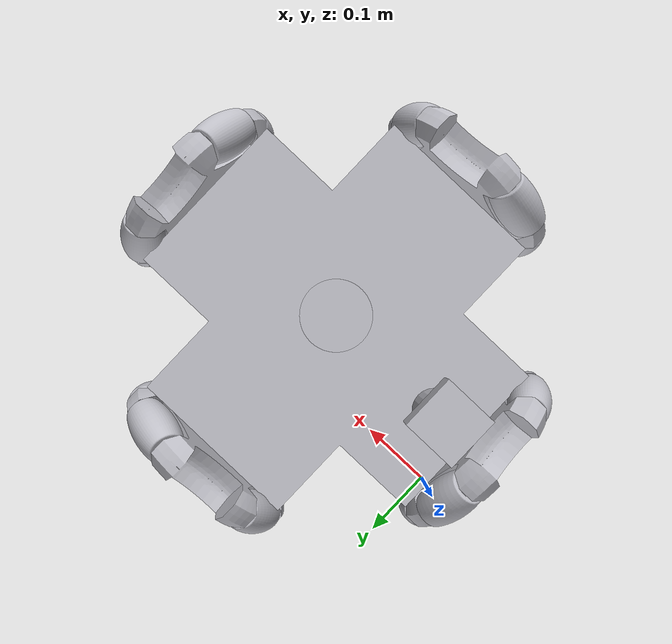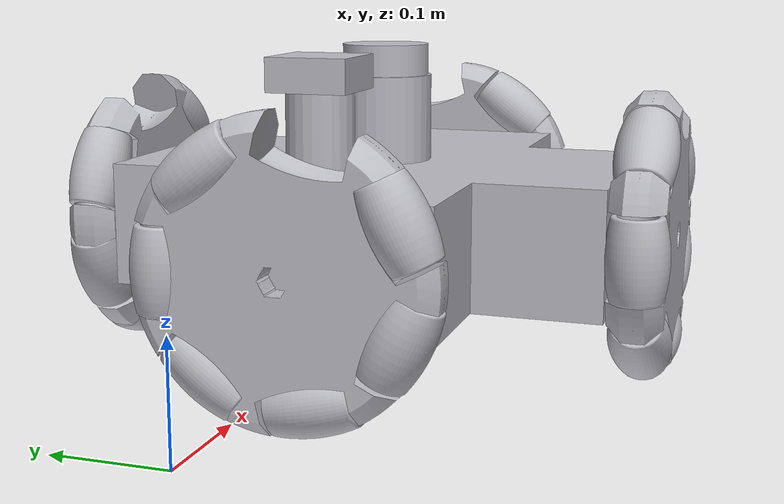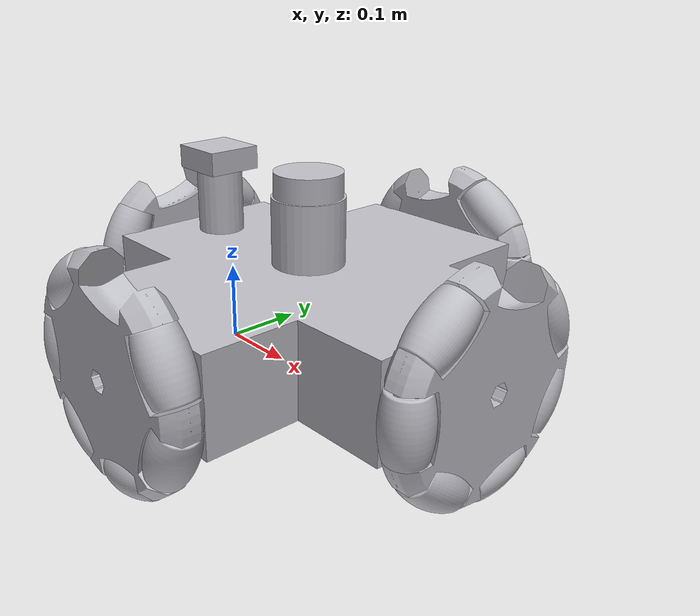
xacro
<?xml version="1.0" ?>
<robot name="robot" xmlns:xacro="http://www.ros.org/wiki/xacro">

<xacro:include filename="$(find robot_description)/urdf/materials.xacro" />
<xacro:include filename="$(find robot_description)/urdf/robot.trans" />
<xacro:include filename="$(find robot_description)/urdf/robot.gazebo" />
<link name="base_footprint"/>
  <material name="white">
    <color rgba="0 0 0 1"/>
  </material>
<link name="base_link">
  <inertial>
    <origin xyz="0.24111155939066492 -0.07977210689211883 0.14685100507879903" rpy="0 0 0"/>
    <mass value="97.70655736264345"/>
    <inertia ixx="1.04738" iyy="1.071388" izz="1.910052" ixy="-0.0" iyz="0.0" ixz="0.013263"/>
  </inertial>
  <visual>
    <origin xyz="0 0 0" rpy="0 0 0"/>
    <geometry>
      <mesh filename="package://robot_description/meshes/base_link.stl" scale="0.001 0.001 0.001"/>
    </geometry>
    <material name="silver"/>
  </visual>
  <collision>
    <origin xyz="0 0 0" rpy="0 0 0"/>
    <geometry>
      <mesh filename="package://robot_description/meshes/base_link.stl" scale="0.001 0.001 0.001"/>
    </geometry>
  </collision>
</link>

<link name="wheel_1">
  <inertial>
    <origin xyz="-0.02091336594637204 2.255264061681861e-06 7.483123681401027e-06" rpy="0 0 0"/>
    <mass value="70.92071942604584"/>
    <inertia ixx="0.29308" iyy="0.15702" izz="0.15698" ixy="-0.0" iyz="-2e-05" ixz="-0.0"/>
  </inertial>
  <visual>
    <origin xyz="-0.042768 0.079772 -0.1438" rpy="0 0 0"/>
    <geometry>
      <mesh filename="package://robot_description/meshes/wheel_1.stl" scale="0.001 0.001 0.001"/>
    </geometry>
    <material name="silver"/>
  </visual>
  <collision>
    <origin xyz="-0.042768 0.079772 -0.1438" rpy="0 0 0"/>
    <geometry>
      <mesh filename="package://robot_description/meshes/wheel_1.stl" scale="0.001 0.001 0.001"/>
    </geometry>
  </collision>
</link>

<link name="roller_1_4">
  <inertial>
    <origin xyz="0.0002714843752283855 -3.7326580984431423e-07 0.031113651264933442" rpy="0 0 0"/>
    <mass value="0.5043476523006108"/>
    <inertia ixx="0.000236" iyy="0.000236" izz="0.000175" ixy="-0.0" iyz="0.0" ixz="-1e-06"/>
  </inertial>
  <visual>
    <origin xyz="-0.020768 -0.011544 -0.110226" rpy="0 0 0"/>
    <geometry>
      <mesh filename="package://robot_description/meshes/roller_1_4.stl" scale="0.001 0.001 0.001"/>
    </geometry>
    <material name="silver"/>
  </visual>
  <collision>
    <origin xyz="-0.020768 -0.011544 -0.110226" rpy="0 0 0"/>
    <geometry>
      <mesh filename="package://robot_description/meshes/roller_1_4.stl" scale="0.001 0.001 0.001"/>
    </geometry>
  </collision>
</link>

<link name="roller_1_5">
  <inertial>
    <origin xyz="0.0002722996502091714 0.03042518984782501 -0.0069439932270144444" rpy="0 0 0"/>
    <mass value="0.5043476523006108"/>
    <inertia ixx="0.000236" iyy="0.000178" izz="0.000233" ixy="-1e-06" iyz="1.3e-05" ixz="0.0"/>
  </inertial>
  <visual>
    <origin xyz="-0.020768 0.132825 -0.062245" rpy="0 0 0"/>
    <geometry>
      <mesh filename="package://robot_description/meshes/roller_1_5.stl" scale="0.001 0.001 0.001"/>
    </geometry>
    <material name="silver"/>
  </visual>
  <collision>
    <origin xyz="-0.020768 0.132825 -0.062245" rpy="0 0 0"/>
    <geometry>
      <mesh filename="package://robot_description/meshes/roller_1_5.stl" scale="0.001 0.001 0.001"/>
    </geometry>
  </collision>
</link>

<link name="roller_1_6">
  <inertial>
    <origin xyz="0.0002714843752286353 0.013499551149427913 -0.028032822727647927" rpy="0 0 0"/>
    <mass value="0.5043476523006108"/>
    <inertia ixx="0.000236" iyy="0.000224" izz="0.000186" ixy="-0.0" iyz="2.4e-05" ixz="0.0"/>
  </inertial>
  <visual>
    <origin xyz="-0.020768 0.176612 -0.13443" rpy="0 0 0"/>
    <geometry>
      <mesh filename="package://robot_description/meshes/roller_1_6.stl" scale="0.001 0.001 0.001"/>
    </geometry>
    <material name="silver"/>
  </visual>
  <collision>
    <origin xyz="-0.020768 0.176612 -0.13443" rpy="0 0 0"/>
    <geometry>
      <mesh filename="package://robot_description/meshes/roller_1_6.stl" scale="0.001 0.001 0.001"/>
    </geometry>
  </collision>
</link>

<link name="roller_1_2">
  <inertial>
    <origin xyz="0.0002722996502090673 0.02439841665668805 0.019456906056625527" rpy="0 0 0"/>
    <mass value="0.5043476523006108"/>
    <inertia ixx="0.000236" iyy="0.000198" izz="0.000212" ixy="-0.0" iyz="-3e-05" ixz="-0.0"/>
  </inertial>
  <visual>
    <origin xyz="-0.020768 0.049087 -0.051474" rpy="0 0 0"/>
    <geometry>
      <mesh filename="package://robot_description/meshes/roller_1_2.stl" scale="0.001 0.001 0.001"/>
    </geometry>
    <material name="silver"/>
  </visual>
  <collision>
    <origin xyz="-0.020768 0.049087 -0.051474" rpy="0 0 0"/>
    <geometry>
      <mesh filename="package://robot_description/meshes/roller_1_2.stl" scale="0.001 0.001 0.001"/>
    </geometry>
  </collision>
</link>

<link name="wheel_2">
  <inertial>
    <origin xyz="-2.4030989059231622e-06 -0.020913431895765278 7.483123681567561e-06" rpy="0 0 0"/>
    <mass value="70.92071942604584"/>
    <inertia ixx="0.15702" iyy="0.29308" izz="0.15698" ixy="0.0" iyz="-0.0" ixz="2e-05"/>
  </inertial>
  <visual>
    <origin xyz="-0.242768 0.279772 -0.1438" rpy="0 0 0"/>
    <geometry>
      <mesh filename="package://robot_description/meshes/wheel_2.stl" scale="0.001 0.001 0.001"/>
    </geometry>
    <material name="silver"/>
  </visual>
  <collision>
    <origin xyz="-0.242768 0.279772 -0.1438" rpy="0 0 0"/>
    <geometry>
      <mesh filename="package://robot_description/meshes/wheel_2.stl" scale="0.001 0.001 0.001"/>
    </geometry>
  </collision>
</link>

<link name="wheel_3">
  <inertial>
    <origin xyz="0.020913284060920412 -2.469048299535981e-06 7.483123681401027e-06" rpy="0 0 0"/>
    <mass value="70.92071942604584"/>
    <inertia ixx="0.29308" iyy="0.15702" izz="0.15698" ixy="-0.0" iyz="2e-05" ixz="0.0"/>
  </inertial>
  <visual>
    <origin xyz="-0.442768 0.079772 -0.1438" rpy="0 0 0"/>
    <geometry>
      <mesh filename="package://robot_description/meshes/wheel_3.stl" scale="0.001 0.001 0.001"/>
    </geometry>
    <material name="silver"/>
  </visual>
  <collision>
    <origin xyz="-0.442768 0.079772 -0.1438" rpy="0 0 0"/>
    <geometry>
      <mesh filename="package://robot_description/meshes/wheel_3.stl" scale="0.001 0.001 0.001"/>
    </geometry>
  </collision>
</link>

<link name="wheel_4">
  <inertial>
    <origin xyz="2.3212134547534458e-06 0.020913218111527493 7.483123681567561e-06" rpy="0 0 0"/>
    <mass value="70.92071942604584"/>
    <inertia ixx="0.15702" iyy="0.29308" izz="0.15698" ixy="0.0" iyz="0.0" ixz="-2e-06"/>
  </inertial>
  <visual>
    <origin xyz="-0.242768 -0.120228 -0.1438" rpy="0 0 0"/>
    <geometry>
      <mesh filename="package://robot_description/meshes/wheel_4.stl" scale="0.001 0.001 0.001"/>
    </geometry>
    <material name="silver"/>
  </visual>
  <collision>
    <origin xyz="-0.242768 -0.120228 -0.1438" rpy="0 0 0"/>
    <geometry>
      <mesh filename="package://robot_description/meshes/wheel_4.stl" scale="0.001 0.001 0.001"/>
    </geometry>
  </collision>
</link>

<link name="roller_2_5">
  <inertial>
    <origin xyz="0.024398625276668112 0.00027223369917195317 0.01945693684387137" rpy="0 0 0"/>
    <mass value="0.50434765230061"/>
    <inertia ixx="0.000198" iyy="0.000236" izz="0.000212" ixy="-0.0" iyz="-0.0" ixz="-3e-05"/>
  </inertial>
  <visual>
    <origin xyz="-0.159584 0.301772 -0.194261" rpy="0 0 0"/>
    <geometry>
      <mesh filename="package://robot_description/meshes/roller_2_5.stl" scale="0.001 0.001 0.001"/>
    </geometry>
    <material name="silver"/>
  </visual>
  <collision>
    <origin xyz="-0.159584 0.301772 -0.194261" rpy="0 0 0"/>
    <geometry>
      <mesh filename="package://robot_description/meshes/roller_2_5.stl" scale="0.001 0.001 0.001"/>
    </geometry>
  </collision>
</link>

<link name="roller_2_4">
  <inertial>
    <origin xyz="2.2543178757050697e-07 0.0002714184241910389 0.031113651265674877" rpy="0 0 0"/>
    <mass value="0.50434765230061"/>
    <inertia ixx="0.000236" iyy="0.000236" izz="0.000175" ixy="-0.0" iyz="-1e-06" ixz="0.0"/>
  </inertial>
  <visual>
    <origin xyz="-0.151452 0.301772 -0.110226" rpy="0 0 0"/>
    <geometry>
      <mesh filename="package://robot_description/meshes/roller_2_4.stl" scale="0.001 0.001 0.001"/>
    </geometry>
    <material name="silver"/>
  </visual>
  <collision>
    <origin xyz="-0.151452 0.301772 -0.110226" rpy="0 0 0"/>
    <geometry>
      <mesh filename="package://robot_description/meshes/roller_2_4.stl" scale="0.001 0.001 0.001"/>
    </geometry>
  </collision>
</link>

<link name="roller_2_3">
  <inertial>
    <origin xyz="-0.02432552480857772 0.0002714184243299833 0.019398658856668742" rpy="0 0 0"/>
    <mass value="0.50434765230061"/>
    <inertia ixx="0.000198" iyy="0.000236" izz="0.000212" ixy="0.0" iyz="-0.0" ixz="3e-05"/>
  </inertial>
  <visual>
    <origin xyz="-0.212083 0.301772 -0.051474" rpy="0 0 0"/>
    <geometry>
      <mesh filename="package://robot_description/meshes/roller_2_3.stl" scale="0.001 0.001 0.001"/>
    </geometry>
    <material name="silver"/>
  </visual>
  <collision>
    <origin xyz="-0.212083 0.301772 -0.051474" rpy="0 0 0"/>
    <geometry>
      <mesh filename="package://robot_description/meshes/roller_2_3.stl" scale="0.001 0.001 0.001"/>
    </geometry>
  </collision>
</link>

<link name="roller_2_2">
  <inertial>
    <origin xyz="-0.030333258690093567 0.0002714184241914275 -0.006923205040461698" rpy="0 0 0"/>
    <mass value="0.50434765230061"/>
    <inertia ixx="0.000178" iyy="0.000236" izz="0.000233" ixy="1e-06" iyz="0.0" ixz="-1.3e-05"/>
  </inertial>
  <visual>
    <origin xyz="-0.29582 0.301772 -0.062245" rpy="0 0 0"/>
    <geometry>
      <mesh filename="package://robot_description/meshes/roller_2_2.stl" scale="0.001 0.001 0.001"/>
    </geometry>
    <material name="silver"/>
  </visual>
  <collision>
    <origin xyz="-0.29582 0.301772 -0.062245" rpy="0 0 0"/>
    <geometry>
      <mesh filename="package://robot_description/meshes/roller_2_2.stl" scale="0.001 0.001 0.001"/>
    </geometry>
  </collision>
</link>

<link name="roller_2_7">
  <inertial>
    <origin xyz="0.013499883392466938 0.0002714184261300989 -0.028031998836505367" rpy="0 0 0"/>
    <mass value="0.50434765230061"/>
    <inertia ixx="0.000224" iyy="0.000236" izz="0.000186" ixy="-0.0" iyz="0.0" ixz="2.4e-05"/>
  </inertial>
  <visual>
    <origin xyz="-0.310473 0.301772 -0.21367" rpy="0 0 0"/>
    <geometry>
      <mesh filename="package://robot_description/meshes/roller_2_7.stl" scale="0.001 0.001 0.001"/>
    </geometry>
    <material name="silver"/>
  </visual>
  <collision>
    <origin xyz="-0.310473 0.301772 -0.21367" rpy="0 0 0"/>
    <geometry>
      <mesh filename="package://robot_description/meshes/roller_2_7.stl" scale="0.001 0.001 0.001"/>
    </geometry>
  </collision>
</link>

<link name="roller_3_4">
  <inertial>
    <origin xyz="-0.00027156625903568266 0.024325519647217297 0.019398689639133104" rpy="0 0 0"/>
    <mass value="0.5043476523006117"/>
    <inertia ixx="0.000236" iyy="0.000198" izz="0.000212" ixy="0.0" iyz="-3e-05" ixz="0.0"/>
  </inertial>
  <visual>
    <origin xyz="-0.464768 0.162956 -0.194261" rpy="0 0 0"/>
    <geometry>
      <mesh filename="package://robot_description/meshes/roller_3_4.stl" scale="0.001 0.001 0.001"/>
    </geometry>
    <material name="silver"/>
  </visual>
  <collision>
    <origin xyz="-0.464768 0.162956 -0.194261" rpy="0 0 0"/>
    <geometry>
      <mesh filename="package://robot_description/meshes/roller_3_4.stl" scale="0.001 0.001 0.001"/>
    </geometry>
  </collision>
</link>

<link name="roller_3_3">
  <inertial>
    <origin xyz="-0.0002715662590359047 1.5948517681496632e-07 0.031113651265698858" rpy="0 0 0"/>
    <mass value="0.5043476523006117"/>
    <inertia ixx="0.000236" iyy="0.000236" izz="0.000175" ixy="-0.0" iyz="-0.0" ixz="1e-06"/>
  </inertial>
  <visual>
    <origin xyz="-0.464768 0.171088 -0.110226" rpy="0 0 0"/>
    <geometry>
      <mesh filename="package://robot_description/meshes/roller_3_3.stl" scale="0.001 0.001 0.001"/>
    </geometry>
    <material name="silver"/>
  </visual>
  <collision>
    <origin xyz="-0.464768 0.171088 -0.110226" rpy="0 0 0"/>
    <geometry>
      <mesh filename="package://robot_description/meshes/roller_3_3.stl" scale="0.001 0.001 0.001"/>
    </geometry>
  </collision>
</link>

<link name="roller_3_5">
  <inertial>
    <origin xyz="-0.0002723815340174296 -0.02439863043927684 0.01945690605992096" rpy="0 0 0"/>
    <mass value="0.5043476523006117"/>
    <inertia ixx="0.000236" iyy="0.000198" izz="0.000212" ixy="-0.0" iyz="3e-05" ixz="0.0"/>
  </inertial>
  <visual>
    <origin xyz="-0.464768 0.110457 -0.051474" rpy="0 0 0"/>
    <geometry>
      <mesh filename="package://robot_description/meshes/roller_3_5.stl" scale="0.001 0.001 0.001"/>
    </geometry>
    <material name="silver"/>
  </visual>
  <collision>
    <origin xyz="-0.464768 0.110457 -0.051474" rpy="0 0 0"/>
    <geometry>
      <mesh filename="package://robot_description/meshes/roller_3_5.stl" scale="0.001 0.001 0.001"/>
    </geometry>
  </collision>
</link>

<link name="roller_3_7">
  <inertial>
    <origin xyz="-0.00027156625903657083 -0.030333324640129403 -0.006923205037754711" rpy="0 0 0"/>
    <mass value="0.5043476523006117"/>
    <inertia ixx="0.000236" iyy="0.000178" izz="0.000233" ixy="-1e-06" iyz="-1.3e-05" ixz="-0.0"/>
  </inertial>
  <visual>
    <origin xyz="-0.464768 0.02672 -0.062245" rpy="0 0 0"/>
    <geometry>
      <mesh filename="package://robot_description/meshes/roller_3_7.stl" scale="0.001 0.001 0.001"/>
    </geometry>
    <material name="silver"/>
  </visual>
  <collision>
    <origin xyz="-0.464768 0.02672 -0.062245" rpy="0 0 0"/>
    <geometry>
      <mesh filename="package://robot_description/meshes/roller_3_7.stl" scale="0.001 0.001 0.001"/>
    </geometry>
  </collision>
</link>

<link name="roller_3_6">
  <inertial>
    <origin xyz="-0.0002715662590359602 -0.013499764937244182 -0.028032822726773876" rpy="0 0 0"/>
    <mass value="0.5043476523006117"/>
    <inertia ixx="0.000236" iyy="0.000224" izz="0.000186" ixy="-0.0" iyz="-2.4e-05" ixz="-0.0"/>
  </inertial>
  <visual>
    <origin xyz="-0.464768 -0.017068 -0.13443" rpy="0 0 0"/>
    <geometry>
      <mesh filename="package://robot_description/meshes/roller_3_6.stl" scale="0.001 0.001 0.001"/>
    </geometry>
    <material name="silver"/>
  </visual>
  <collision>
    <origin xyz="-0.464768 -0.017068 -0.13443" rpy="0 0 0"/>
    <geometry>
      <mesh filename="package://robot_description/meshes/roller_3_6.stl" scale="0.001 0.001 0.001"/>
    </geometry>
  </collision>
</link>

<link name="roller_4_3">
  <inertial>
    <origin xyz="-3.073187158642021e-07 -0.0002716322084291567 0.03111365126568784" rpy="0 0 0"/>
    <mass value="0.5043476523006097"/>
    <inertia ixx="0.000236" iyy="0.000236" izz="0.000175" ixy="0.0" iyz="1e-06" ixz="0.0"/>
  </inertial>
  <visual>
    <origin xyz="-0.334084 -0.142228 -0.110226" rpy="0 0 0"/>
    <geometry>
      <mesh filename="package://robot_description/meshes/roller_4_3.stl" scale="0.001 0.001 0.001"/>
    </geometry>
    <material name="silver"/>
  </visual>
  <collision>
    <origin xyz="-0.334084 -0.142228 -0.110226" rpy="0 0 0"/>
    <geometry>
      <mesh filename="package://robot_description/meshes/roller_4_3.stl" scale="0.001 0.001 0.001"/>
    </geometry>
  </collision>
</link>

<link name="roller_4_4">
  <inertial>
    <origin xyz="0.024325442923425256 -0.00027163220842882363 0.019398658856316413" rpy="0 0 0"/>
    <mass value="0.5043476523006097"/>
    <inertia ixx="0.000198" iyy="0.000236" izz="0.000212" ixy="0.0" iyz="0.0" ixz="-3e-05"/>
  </inertial>
  <visual>
    <origin xyz="-0.273453 -0.142228 -0.051474" rpy="0 0 0"/>
    <geometry>
      <mesh filename="package://robot_description/meshes/roller_4_4.stl" scale="0.001 0.001 0.001"/>
    </geometry>
    <material name="silver"/>
  </visual>
  <collision>
    <origin xyz="-0.273453 -0.142228 -0.051474" rpy="0 0 0"/>
    <geometry>
      <mesh filename="package://robot_description/meshes/roller_4_4.stl" scale="0.001 0.001 0.001"/>
    </geometry>
  </collision>
</link>

<link name="roller_4_7">
  <inertial>
    <origin xyz="-0.013499767590025025 0.0002714184242297579 -0.02803283743471971" rpy="0 0 0"/>
    <mass value="0.5043476523006097"/>
    <inertia ixx="0.000224" iyy="0.000236" izz="0.000186" ixy="0.0" iyz="0.0" ixz="-2.4e-05"/>
  </inertial>
  <visual>
    <origin xyz="-0.175111 -0.142228 -0.213667" rpy="0 0 0"/>
    <geometry>
      <mesh filename="package://robot_description/meshes/roller_4_7.stl" scale="0.001 0.001 0.001"/>
    </geometry>
    <material name="silver"/>
  </visual>
  <collision>
    <origin xyz="-0.175111 -0.142228 -0.213667" rpy="0 0 0"/>
    <geometry>
      <mesh filename="package://robot_description/meshes/roller_4_7.stl" scale="0.001 0.001 0.001"/>
    </geometry>
  </collision>
</link>

<link name="lidar_1">
  <inertial>
    <origin xyz="-4.094272545995814e-08 -1.0689211875358762e-07 0.012500469026049621" rpy="0 0 0"/>
    <mass value="0.7552585088770711"/>
    <inertia ixx="0.000271" iyy="0.000271" izz="0.000463" ixy="-0.0" iyz="-0.0" ixz="-0.0"/>
  </inertial>
  <visual>
    <origin xyz="-0.242768 0.079772 -0.2638" rpy="0 0 0"/>
    <geometry>
      <mesh filename="package://robot_description/meshes/lidar_1.stl" scale="0.001 0.001 0.001"/>
    </geometry>
    <material name="silver"/>
  </visual>
  <collision>
    <origin xyz="-0.242768 0.079772 -0.2638" rpy="0 0 0"/>
    <geometry>
      <mesh filename="package://robot_description/meshes/lidar_1.stl" scale="0.001 0.001 0.001"/>
    </geometry>
  </collision>
</link>

<link name="camera_1">
  <inertial>
    <origin xyz="-4.094272545995814e-08 -1.0689211872583204e-07 0.012500469026049121" rpy="0 0 0"/>
    <mass value="0.7064999999999999"/>
    <inertia ixx="0.000249" iyy="0.000249" izz="0.000424" ixy="0.0" iyz="0.0" ixz="0.0"/>
  </inertial>
  <visual>
    <origin xyz="-0.092768 0.079772 -0.2638" rpy="0 0 0"/>
    <geometry>
      <mesh filename="package://robot_description/meshes/camera_1.stl" scale="0.001 0.001 0.001"/>
    </geometry>
    <material name="silver"/>
  </visual>
  <collision>
    <origin xyz="-0.092768 0.079772 -0.2638" rpy="0 0 0"/>
    <geometry>
      <mesh filename="package://robot_description/meshes/camera_1.stl" scale="0.001 0.001 0.001"/>
    </geometry>
  </collision>
</link>

<link name="roller_4_2">
  <inertial>
    <origin xyz="-0.024398707163050704 -0.0002724474834089885 0.01945693684272362" rpy="0 0 0"/>
    <mass value="0.5043476523006097"/>
    <inertia ixx="0.000198" iyy="0.000236" izz="0.000212" ixy="-0.0" iyz="0.0" ixz="3e-05"/>
  </inertial>
  <visual>
    <origin xyz="-0.325952 -0.142228 -0.194261" rpy="0 0 0"/>
    <geometry>
      <mesh filename="package://robot_description/meshes/roller_4_2.stl" scale="0.001 0.001 0.001"/>
    </geometry>
    <material name="silver"/>
  </visual>
  <collision>
    <origin xyz="-0.325952 -0.142228 -0.194261" rpy="0 0 0"/>
    <geometry>
      <mesh filename="package://robot_description/meshes/roller_4_2.stl" scale="0.001 0.001 0.001"/>
    </geometry>
  </collision>
</link>

<link name="roller_1_1">
  <inertial>
    <origin xyz="0.00027148437522866997 -0.024325733428609123 0.019398689641474065" rpy="0 0 0"/>
    <mass value="0.5043476523006108"/>
    <inertia ixx="0.000236" iyy="0.000198" izz="0.000212" ixy="0.0" iyz="3e-05" ixz="-0.0"/>
  </inertial>
  <visual>
    <origin xyz="-0.020768 -0.003412 -0.194261" rpy="0 0 0"/>
    <geometry>
      <mesh filename="package://robot_description/meshes/roller_1_1.stl" scale="0.001 0.001 0.001"/>
    </geometry>
    <material name="silver"/>
  </visual>
  <collision>
    <origin xyz="-0.020768 -0.003412 -0.194261" rpy="0 0 0"/>
    <geometry>
      <mesh filename="package://robot_description/meshes/roller_1_1.stl" scale="0.001 0.001 0.001"/>
    </geometry>
  </collision>
</link>

<link name="roller_1_3">
  <inertial>
    <origin xyz="0.00027148437633910463 -0.013500031225505638 -0.028031998836560157" rpy="0 0 0"/>
    <mass value="0.5043476523006108"/>
    <inertia ixx="0.000236" iyy="0.000224" izz="0.000186" ixy="0.0" iyz="-2.4e-05" ixz="0.0"/>
  </inertial>
  <visual>
    <origin xyz="-0.020768 0.147477 -0.21367" rpy="0 0 0"/>
    <geometry>
      <mesh filename="package://robot_description/meshes/roller_1_3.stl" scale="0.001 0.001 0.001"/>
    </geometry>
    <material name="silver"/>
  </visual>
  <collision>
    <origin xyz="-0.020768 0.147477 -0.21367" rpy="0 0 0"/>
    <geometry>
      <mesh filename="package://robot_description/meshes/roller_1_3.stl" scale="0.001 0.001 0.001"/>
    </geometry>
  </collision>
</link>

<link name="roller_2_1">
  <inertial>
    <origin xyz="-0.013499698985333541 0.00027141842419081685 -0.028032822727958775" rpy="0 0 0"/>
    <mass value="0.50434765230061"/>
    <inertia ixx="0.000224" iyy="0.000236" izz="0.000186" ixy="0.0" iyz="0.0" ixz="-2.4e-05"/>
  </inertial>
  <visual>
    <origin xyz="-0.339608 0.301772 -0.13443" rpy="0 0 0"/>
    <geometry>
      <mesh filename="package://robot_description/meshes/roller_2_1.stl" scale="0.001 0.001 0.001"/>
    </geometry>
    <material name="silver"/>
  </visual>
  <collision>
    <origin xyz="-0.339608 0.301772 -0.13443" rpy="0 0 0"/>
    <geometry>
      <mesh filename="package://robot_description/meshes/roller_2_1.stl" scale="0.001 0.001 0.001"/>
    </geometry>
  </collision>
</link>

<link name="roller_3_1">
  <inertial>
    <origin xyz="-0.00027156626111396465 0.013499817443843461 -0.028031998836160255" rpy="0 0 0"/>
    <mass value="0.5043476523006117"/>
    <inertia ixx="0.000236" iyy="0.000224" izz="0.000186" ixy="0.0" iyz="2.4e-05" ixz="-0.0"/>
  </inertial>
  <visual>
    <origin xyz="-0.464768 0.012067 -0.21367" rpy="0 0 0"/>
    <geometry>
      <mesh filename="package://robot_description/meshes/roller_3_1.stl" scale="0.001 0.001 0.001"/>
    </geometry>
    <material name="silver"/>
  </visual>
  <collision>
    <origin xyz="-0.464768 0.012067 -0.21367" rpy="0 0 0"/>
    <geometry>
      <mesh filename="package://robot_description/meshes/roller_3_1.stl" scale="0.001 0.001 0.001"/>
    </geometry>
  </collision>
</link>

<link name="roller_4_1">
  <inertial>
    <origin xyz="0.013499669003557285 0.0002714184242298967 -0.028032533585066993" rpy="0 0 0"/>
    <mass value="0.5043476523006097"/>
    <inertia ixx="0.000224" iyy="0.000236" izz="0.000186" ixy="-0.0" iyz="0.0" ixz="2.4e-05"/>
  </inertial>
  <visual>
    <origin xyz="-0.145961 -0.142228 -0.134465" rpy="0 0 0"/>
    <geometry>
      <mesh filename="package://robot_description/meshes/roller_4_1.stl" scale="0.001 0.001 0.001"/>
    </geometry>
    <material name="silver"/>
  </visual>
  <collision>
    <origin xyz="-0.145961 -0.142228 -0.134465" rpy="0 0 0"/>
    <geometry>
      <mesh filename="package://robot_description/meshes/roller_4_1.stl" scale="0.001 0.001 0.001"/>
    </geometry>
  </collision>
</link>

<link name="roller_4_6">
  <inertial>
    <origin xyz="0.030333176804983902 -0.0002716322084280465 -0.006923205039024417" rpy="0 0 0"/>
    <mass value="0.5043476523006097"/>
    <inertia ixx="0.000178" iyy="0.000236" izz="0.000233" ixy="1e-06" iyz="-0.0" ixz="1.3e-05"/>
  </inertial>
  <visual>
    <origin xyz="-0.189716 -0.142228 -0.062245" rpy="0 0 0"/>
    <geometry>
      <mesh filename="package://robot_description/meshes/roller_4_6.stl" scale="0.001 0.001 0.001"/>
    </geometry>
    <material name="silver"/>
  </visual>
  <collision>
    <origin xyz="-0.189716 -0.142228 -0.062245" rpy="0 0 0"/>
    <geometry>
      <mesh filename="package://robot_description/meshes/roller_4_6.stl" scale="0.001 0.001 0.001"/>
    </geometry>
  </collision>
</link>

 <joint name="base_joint" type="fixed">
		<parent link="base_footprint" />
		<child link="base_link" />
		<origin xyz="0 0 0"/>
	</joint>

<joint name="Revolute_34" type="continuous">
  <origin xyz="0.042768 -0.079772 0.1438" rpy="0 0 0"/>
  <parent link="base_link"/>
  <child link="wheel_1"/>
  <axis xyz="-1.0 0.0 0.0"/>
</joint>

<joint name="Revolute_37" type="continuous">
  <origin xyz="-0.022 0.091316 -0.033574" rpy="0 0 0"/>
  <parent link="wheel_1"/>
  <child link="roller_1_4"/>
  <axis xyz="0.008727 0.0 0.999962"/>
</joint>

<joint name="Revolute_38" type="continuous">
  <origin xyz="-0.022 -0.053053 -0.081555" rpy="0 0 0"/>
  <parent link="wheel_1"/>
  <child link="roller_1_5"/>
  <axis xyz="0.008727 0.974891 -0.222512"/>
</joint>

<joint name="Revolute_39" type="continuous">
  <origin xyz="-0.022 -0.09684 -0.00937" rpy="0 0 0"/>
  <parent link="wheel_1"/>
  <child link="roller_1_6"/>
  <axis xyz="0.008727 0.433867 -0.900935"/>
</joint>

<joint name="Revolute_41" type="continuous">
  <origin xyz="-0.022 0.030685 -0.092326" rpy="0 0 0"/>
  <parent link="wheel_1"/>
  <child link="roller_1_2"/>
  <axis xyz="0.008727 0.781802 0.623466"/>
</joint>

<joint name="Revolute_42" type="continuous">
  <origin xyz="0.242768 -0.279772 0.1438" rpy="0 0 0"/>
  <parent link="base_link"/>
  <child link="wheel_2"/>
  <axis xyz="-0.0 -1.0 -0.0"/>
</joint>

<joint name="Revolute_43" type="continuous">
  <origin xyz="0.442768 -0.079772 0.1438" rpy="0 0 0"/>
  <parent link="base_link"/>
  <child link="wheel_3"/>
  <axis xyz="1.0 -0.0 -0.0"/>
</joint>

<joint name="Revolute_44" type="continuous">
  <origin xyz="0.242768 0.120228 0.1438" rpy="0 0 0"/>
  <parent link="base_link"/>
  <child link="wheel_4"/>
  <axis xyz="0.0 1.0 0.0"/>
</joint>

<joint name="Revolute_46" type="continuous">
  <origin xyz="-0.083184 -0.022 0.050461" rpy="0 0 0"/>
  <parent link="wheel_2"/>
  <child link="roller_2_5"/>
  <axis xyz="0.781802 0.008727 0.623466"/>
</joint>

<joint name="Revolute_47" type="continuous">
  <origin xyz="-0.091316 -0.022 -0.033574" rpy="0 0 0"/>
  <parent link="wheel_2"/>
  <child link="roller_2_4"/>
  <axis xyz="-0.0 0.008727 0.999962"/>
</joint>

<joint name="Revolute_48" type="continuous">
  <origin xyz="-0.030685 -0.022 -0.092326" rpy="0 0 0"/>
  <parent link="wheel_2"/>
  <child link="roller_2_3"/>
  <axis xyz="-0.781802 0.008727 0.623466"/>
</joint>

<joint name="Revolute_49" type="continuous">
  <origin xyz="0.053052 -0.022 -0.081555" rpy="0 0 0"/>
  <parent link="wheel_2"/>
  <child link="roller_2_2"/>
  <axis xyz="-0.974891 0.008727 -0.222512"/>
</joint>

<joint name="Revolute_51" type="continuous">
  <origin xyz="0.067705 -0.022 0.06987" rpy="0 0 0"/>
  <parent link="wheel_2"/>
  <child link="roller_2_7"/>
  <axis xyz="0.433867 0.008727 -0.900935"/>
</joint>

<joint name="Revolute_53" type="continuous">
  <origin xyz="0.022 -0.083184 0.050461" rpy="0 0 0"/>
  <parent link="wheel_3"/>
  <child link="roller_3_4"/>
  <axis xyz="-0.008727 0.781802 0.623466"/>
</joint>

<joint name="Revolute_54" type="continuous">
  <origin xyz="0.022 -0.091316 -0.033574" rpy="0 0 0"/>
  <parent link="wheel_3"/>
  <child link="roller_3_3"/>
  <axis xyz="-0.008727 -0.0 0.999962"/>
</joint>

<joint name="Revolute_55" type="continuous">
  <origin xyz="0.022 -0.030685 -0.092326" rpy="0 0 0"/>
  <parent link="wheel_3"/>
  <child link="roller_3_5"/>
  <axis xyz="-0.008727 -0.781802 0.623466"/>
</joint>

<joint name="Revolute_56" type="continuous">
  <origin xyz="0.022 0.053052 -0.081555" rpy="0 0 0"/>
  <parent link="wheel_3"/>
  <child link="roller_3_7"/>
  <axis xyz="-0.008727 -0.974891 -0.222512"/>
</joint>

<joint name="Revolute_57" type="continuous">
  <origin xyz="0.022 0.09684 -0.00937" rpy="0 0 0"/>
  <parent link="wheel_3"/>
  <child link="roller_3_6"/>
  <axis xyz="-0.008727 -0.433867 -0.900935"/>
</joint>

<joint name="Revolute_61" type="continuous">
  <origin xyz="0.091316 0.022 -0.033574" rpy="0 0 0"/>
  <parent link="wheel_4"/>
  <child link="roller_4_3"/>
  <axis xyz="0.0 -0.008727 0.999962"/>
</joint>

<joint name="Revolute_62" type="continuous">
  <origin xyz="0.030685 0.022 -0.092326" rpy="0 0 0"/>
  <parent link="wheel_4"/>
  <child link="roller_4_4"/>
  <axis xyz="0.781802 -0.008727 0.623466"/>
</joint>

<joint name="Revolute_65" type="continuous">
  <origin xyz="-0.067657 0.022 0.069867" rpy="0 0 0"/>
  <parent link="wheel_4"/>
  <child link="roller_4_7"/>
  <axis xyz="-0.433867 0.008727 -0.900935"/>
</joint>

<joint name="Rigid_66" type="fixed">
  <origin xyz="0.242768 -0.079772 0.2638" rpy="0 0 0"/>
  <parent link="base_link"/>
  <child link="lidar_1"/>
</joint>

<joint name="Rigid_67" type="fixed">
  <origin xyz="0.092768 -0.079772 0.2638" rpy="0 0 0"/>
  <parent link="base_link"/>
  <child link="camera_1"/>
</joint>

<joint name="Revolute_75" type="continuous">
  <origin xyz="0.083184 0.022 0.050461" rpy="0 0 0"/>
  <parent link="wheel_4"/>
  <child link="roller_4_2"/>
  <axis xyz="-0.781802 -0.008727 0.623466"/>
</joint>

<joint name="Revolute_76" type="continuous">
  <origin xyz="-0.022 0.083184 0.050461" rpy="0 0 0"/>
  <parent link="wheel_1"/>
  <child link="roller_1_1"/>
  <axis xyz="0.008727 -0.781802 0.623466"/>
</joint>

<joint name="Revolute_78" type="continuous">
  <origin xyz="-0.022 -0.067705 0.06987" rpy="0 0 0"/>
  <parent link="wheel_1"/>
  <child link="roller_1_3"/>
  <axis xyz="0.008727 -0.433867 -0.900935"/>
</joint>

<joint name="Revolute_79" type="continuous">
  <origin xyz="0.09684 -0.022 -0.00937" rpy="0 0 0"/>
  <parent link="wheel_2"/>
  <child link="roller_2_1"/>
  <axis xyz="-0.433867 0.008727 -0.900935"/>
</joint>

<joint name="Revolute_81" type="continuous">
  <origin xyz="0.022 0.067705 0.06987" rpy="0 0 0"/>
  <parent link="wheel_3"/>
  <child link="roller_3_1"/>
  <axis xyz="-0.008727 0.433867 -0.900935"/>
</joint>

<joint name="Revolute_83" type="continuous">
  <origin xyz="-0.096807 0.022 -0.009335" rpy="0 0 0"/>
  <parent link="wheel_4"/>
  <child link="roller_4_1"/>
  <axis xyz="0.433867 0.008727 -0.900935"/>
</joint>

<joint name="Revolute_84" type="continuous">
  <origin xyz="-0.053052 0.022 -0.081555" rpy="0 0 0"/>
  <parent link="wheel_4"/>
  <child link="roller_4_6"/>
  <axis xyz="0.974891 -0.008727 -0.222512"/>
</joint>

</robot>

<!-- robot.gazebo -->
<robot name="robot" xmlns:xacro="http://www.ros.org/wiki/xacro" >

<xacro:property name="body_color" value="Gazebo/Silver" />

<gazebo>
  <plugin name="gazebo_ros_control" filename="libgazebo_ros_control.so"/>
</gazebo>
<gazebo reference="base_link">
  <material>${body_color}</material>
  <mu1>0.2</mu1>
  <mu2>0.2</mu2>
  <selfCollide>true</selfCollide>
  <gravity>true</gravity>
</gazebo>

<gazebo reference="wheel_2">
  <material>${body_color}</material>
  <mu1>0.2</mu1>
  <mu2>0.2</mu2>
  <selfCollide>true</selfCollide>
</gazebo>

<gazebo reference="wheel_3">
  <material>${body_color}</material>
  <mu1>0.2</mu1>
  <mu2>0.2</mu2>
  <selfCollide>true</selfCollide>
</gazebo>

<gazebo reference="wheel_4">
  <material>${body_color}</material>
  <mu1>0.2</mu1>
  <mu2>0.2</mu2>
  <selfCollide>true</selfCollide>
</gazebo>

<gazebo reference="lidar_1">
  <material>${body_color}</material>
  <mu1>0.2</mu1>
  <mu2>0.2</mu2>
  <selfCollide>true</selfCollide>
  <sensor type="ray" name="head_hokuyo_sensor">
      <pose>0 0 0 0 0 0</pose>
      <visualize>true</visualize>
      <update_rate>40</update_rate>
      <ray>
        <scan>
          <horizontal>
            <samples>720</samples>
            <resolution>1</resolution>
            <min_angle>-3.14159</min_angle>
            <max_angle>3.14159</max_angle>
          </horizontal>
        </scan>
        <range>
          <min>0.3</min>
          <max>12.0</max>
          <resolution>0.01</resolution>
        </range>
        <noise>
          <type>gaussian</type>
          <mean>0.0</mean>
          <stddev>0.01</stddev>
        </noise>
      </ray>
      <plugin name="gazebo_ros_head_hokuyo_controller" filename="libgazebo_ros_laser.so">
        <topicName>/scan</topicName>
        <frameName>lidar_1</frameName>
      </plugin>
    </sensor>
</gazebo>

<gazebo reference="camera_1">
  <material>${body_color}</material>
  <mu1>0.2</mu1>
  <mu2>0.2</mu2>
  <selfCollide>true</selfCollide>
</gazebo>

</robot>
